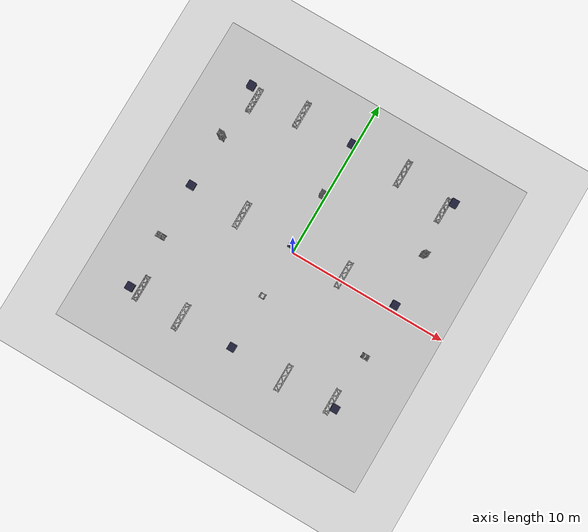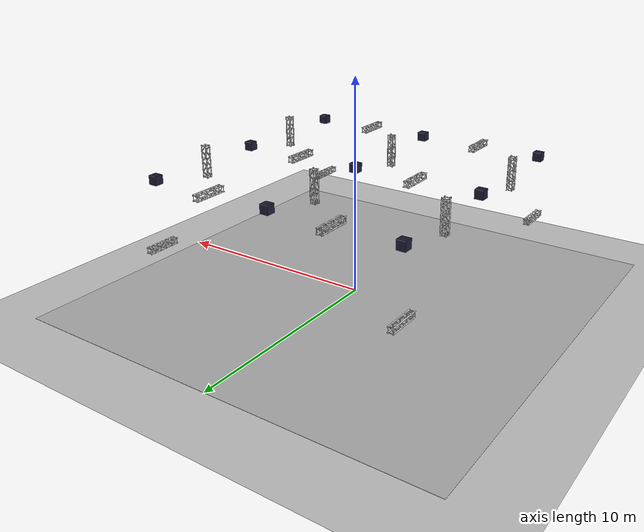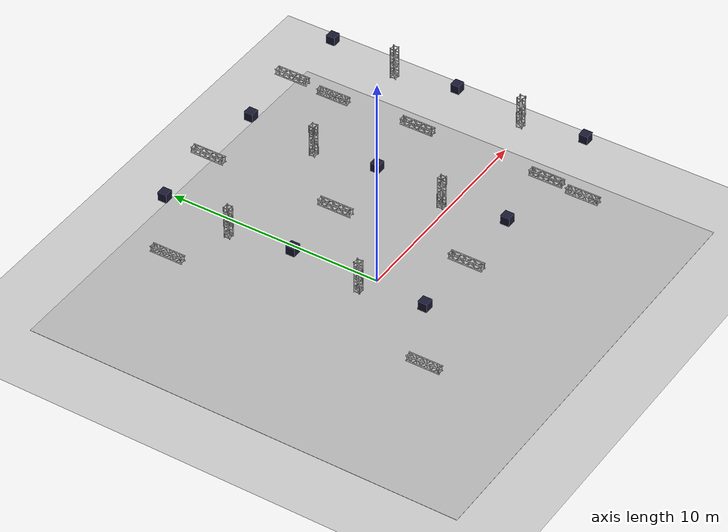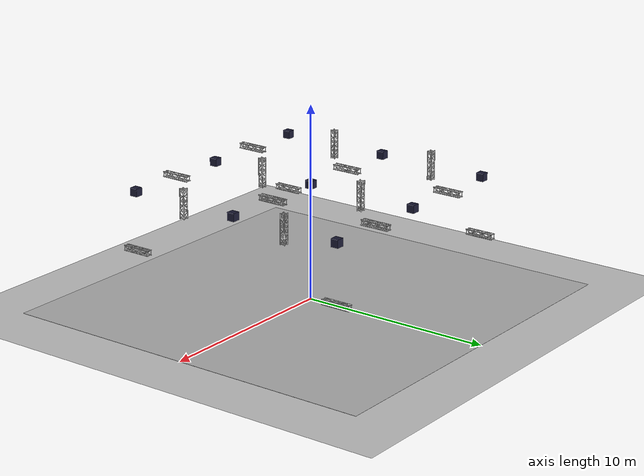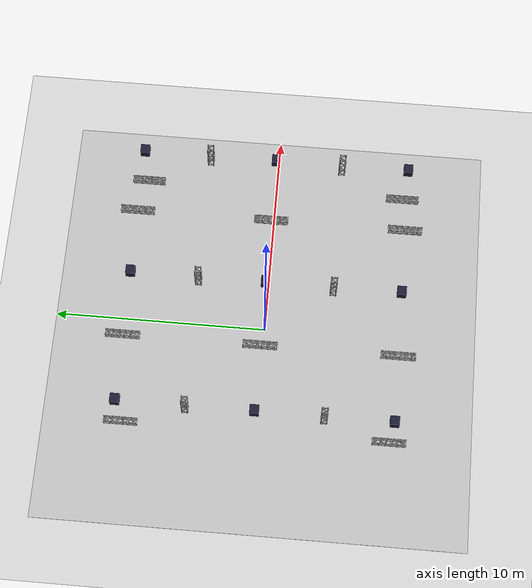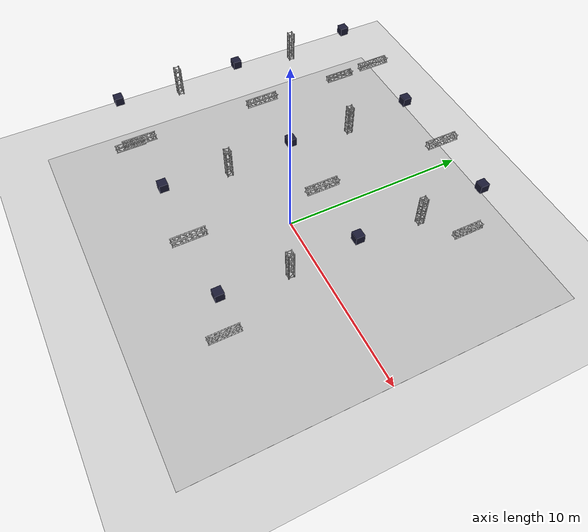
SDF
<?xml version="1.0" ?>
<sdf version="1.5">
  <world name="map">
    <include>
      <uri>model://sun</uri>
    </include>

    <include>
      <uri>model://ground_plane</uri>
    </include>

    <model name="truss_groundplane">
      <pose>0 0 0.01 0 0 0</pose>
      <include>
        <uri>model://truss_groundplane</uri>
      </include>
    </model>

    <model name="stand0">
      <pose>6 6 3 0 0 0</pose>
      <include>
        <uri>model://truss</uri>
      </include>
    </model>

    <model name="corner0">
      <pose>6 6 6 0 0 0</pose>
      <include>
        <uri>model://truss_corner</uri>
      </include>
    </model>

    <model name="top01_0">
      <pose>6 3 6 1.57 0 0</pose>
      <include>
        <uri>model://truss</uri>
      </include>
    </model>

    <model name="top_corner01">
      <pose>6 0 6 0 0 0</pose>
      <include>
        <uri>model://truss_corner</uri>
      </include>
    </model>

    <model name="top01_1">
      <pose>6 -3 6 1.57 0 0</pose>
      <include>
        <uri>model://truss</uri>
      </include>
    </model>

    <model name="stand1">
      <pose>6 -6 3 0 0 0</pose>
      <include>
        <uri>model://truss</uri>
      </include>
    </model>

    <model name="corner1">
      <pose>6 -6 6 0 0 0</pose>
      <include>
        <uri>model://truss_corner</uri>
      </include>
    </model>

    <model name="top12_0">
      <pose>3 -6 6 0 1.57 0</pose>
      <include>
        <uri>model://truss</uri>
      </include>
    </model>

    <model name="top_corner12">
      <pose>0 -6 6 0 0 0</pose>
      <include>
        <uri>model://truss_corner</uri>
      </include>
    </model>

    <model name="top12_1">
      <pose>-3 -6 6 0 1.57 0</pose>
      <include>
        <uri>model://truss</uri>
      </include>
    </model>

    <model name="stand2">
      <pose>-6 -6 3 0 0 0</pose>
      <include>
        <uri>model://truss</uri>
      </include>
    </model>

    <model name="corner2">
      <pose>-6 -6 6 0 0 0</pose>
      <include>
        <uri>model://truss_corner</uri>
      </include>
    </model>

    <model name="top23_0">
      <pose>-6 3 6 1.57 0 0</pose>
      <include>
        <uri>model://truss</uri>
      </include>
    </model>

    <model name="top_corner23">
      <pose>-6 0 6 0 0 0</pose>
      <include>
        <uri>model://truss_corner</uri>
      </include>
    </model>

    <model name="top23_1">
      <pose>-6 -3 6 1.57 0 0</pose>
      <include>
        <uri>model://truss</uri>
      </include>
    </model>

    <model name="stand3">
      <pose>-6 6 3 0 0 0</pose>
      <include>
        <uri>model://truss</uri>
      </include>
    </model>

    <model name="corner3">
      <pose>-6 6 6 0 0 0</pose>
      <include>
        <uri>model://truss_corner</uri>
      </include>
    </model>

    <model name="top30_0">
      <pose>3 6 6 0 1.57 0</pose>
      <include>
        <uri>model://truss</uri>
      </include>
    </model>

    <model name="top_corner30">
      <pose>0 6 6 0 0 0</pose>
      <include>
        <uri>model://truss_corner</uri>
      </include>
    </model>

    <model name="top30_1">
      <pose>-3 6 6 0 1.57 0</pose>
      <include>
        <uri>model://truss</uri>
      </include>
    </model>

    <model name="center">
      <pose>0 0 6 0 0 0</pose>
      <include>
        <uri>model://truss_corner</uri>
      </include>
    </model>

    <model name="center01">
      <pose>3 0 6 0 1.57 0</pose>
      <include>
        <uri>model://truss</uri>
      </include>
    </model>

    <model name="center12">
      <pose>0 -3 6 1.57 0 0</pose>
      <include>
        <uri>model://truss</uri>
      </include>
    </model>

    <model name="center23">
      <pose>-3 0 6 0 1.57 0</pose>
      <include>
        <uri>model://truss</uri>
      </include>
    </model>

    <model name="center30">
      <pose>0 3 6 1.57 0 0</pose>
      <include>
        <uri>model://truss</uri>
      </include>
    </model>

    <scene>
      <ambient>0.0 0.0 0.0 1.0</ambient>
      <shadows>0</shadows>
    </scene>

    <physics name='default_physics' default='0' type='ode'>
      <gravity>0 0 -9.8066</gravity>
      <ode>
        <solver>
          <type>quick</type>
          <iters>10</iters>
          <sor>1.3</sor>
          <use_dynamic_moi_rescaling>0</use_dynamic_moi_rescaling>
        </solver>
        <constraints>
          <cfm>0</cfm>
          <erp>0.2</erp>
          <contact_max_correcting_vel>100</contact_max_correcting_vel>
          <contact_surface_layer>0.001</contact_surface_layer>
        </constraints>
      </ode>
      <max_step_size>0.004</max_step_size>
      <real_time_factor>1</real_time_factor>
      <real_time_update_rate>250</real_time_update_rate>
      <magnetic_field>6.0e-6 2.3e-5 -4.2e-5</magnetic_field>
    </physics>
  </world>
</sdf>

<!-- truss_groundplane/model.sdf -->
<sdf version="1.6">
  <model name="truss_groundplane">
    <static>true</static>
    <link name="link">
      <pose>0 0 0 0 0 0</pose>

      <collision name="collision">
      <pose>0 0 0 0 0 0</pose>
        <geometry>
          <box>
            <size>20 20 0.01</size>
          </box>
        </geometry>
      </collision>

      <visual name="truss_groundplane">
        <geometry>
          <box>
            <size>20 20 0.01</size>
          </box>
        </geometry>
     </visual>
    </link>
  </model>
</sdf>

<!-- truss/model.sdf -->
<sdf version="1.5">
  <model name="truss">
  <static>true</static>
    <link name="link">
      <inertial>
        <mass>20.7307</mass>
        <inertia>
          <ixx>4.7978</ixx>
          <ixy>0.0</ixy>
          <ixz>0.0</ixz>
          <iyy>0.4699</iyy>
          <iyz>-0.002</iyz>
          <izz>4.7978</izz>
        </inertia>
      </inertial>
      <collision name="collision">
        <geometry>
          <mesh>
            <uri>model://models/truss/meshes/truss.dae</uri>
          </mesh>
        </geometry>
        <surface>
          <bounce>
            <restitution_coefficient>0.0</restitution_coefficient>
            <threshold>100000</threshold>
          </bounce>
          <friction>
            <ode>
              <mu>10</mu>
              <mu2>10</mu2>
            </ode>
          </friction>
        </surface>
      </collision>
      <visual name="visual">
        <geometry>
          <mesh>
            <uri>model://models/truss//meshes/truss.dae</uri>
          </mesh>
        </geometry>
      </visual>
    </link>
  </model>
</sdf>

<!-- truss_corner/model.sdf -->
<sdf version="1.6">
  <model name="truss_corner">
    <static>true</static>
    <link name="link">
      <pose>0 0 0 0 0 0</pose>

      <collision name="collision">
      <pose>0 0 0 0 0 0</pose>
        <geometry>
          <box>
            <size>0.4 0.4 0.4</size>
          </box>
        </geometry>
      </collision>

      <visual name="truss">
        <geometry>
          <box>
            <size>0.4 0.4 0.4</size>
          </box>
        </geometry>
        <material> <!-- Wheel material -->
          <ambient>0.1 0.1 0.1 1</ambient>
          <diffuse>0.1 0.1 0.2 1</diffuse>
          <specular>0 0 0 0</specular>
          <emissive>0 0 0 1</emissive>
        </material> <!-- End wheel material -->
     </visual>
    </link>
  </model>
</sdf>
